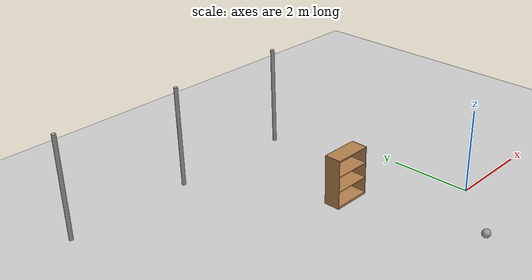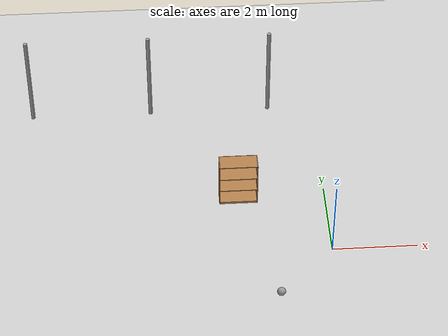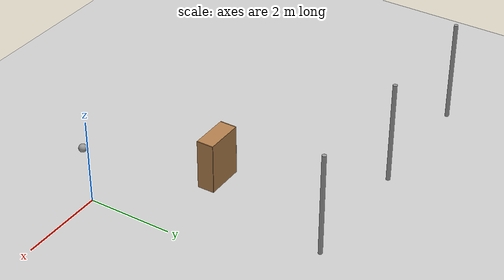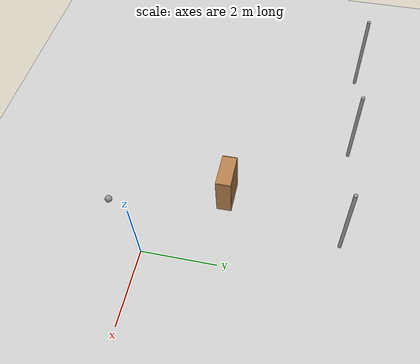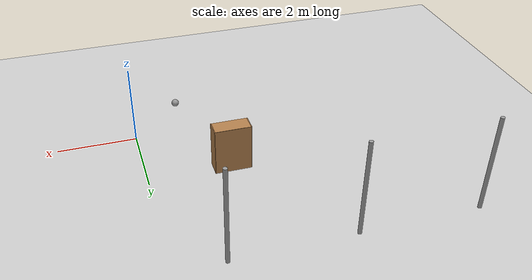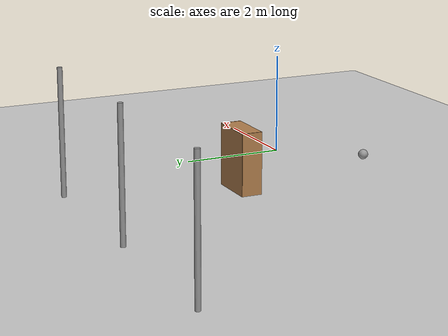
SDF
<sdf version="1.6">
 <world name="default">
  <model name="ground_plane">
   <static>1</static>
   <link name="link">
    <collision name="collision">
     <geometry><plane><normal>0 0 1</normal><size>100 100</size></plane></geometry>
     <surface><friction><ode><mu>100</mu><mu2>50</mu2></ode></friction></surface>
    </collision>
    <visual name="visual">
     <cast_shadows>0</cast_shadows>
     <geometry><plane><normal>0 0 1</normal><size>100 100</size></plane></geometry>
     <material>
      <script><uri>file://media/materials/scripts/gazebo.material</uri><name>Gazebo/Grey</name></script>
     </material>
    </visual>
   </link>
  </model>
  <model name="unit_cylinder_clone_2_clone_clone">
   <pose>-7.09352 4.97944 1.22098 -2e-06 -3e-06 -0.000778</pose>
   <link name="link">
    <inertial>
     <mass>1</mass>
     <inertia><ixx>0.145833</ixx><ixy>0</ixy><ixz>0</ixz><iyy>0.145833</iyy><iyz>0</iyz><izz>0.125</izz></inertia>
    </inertial>
    <collision name="collision">
     <geometry><cylinder><radius>0.0486883</radius><length>2.44196</length></cylinder></geometry>
    </collision>
    <visual name="visual">
     <geometry><cylinder><radius>0.0486883</radius><length>2.44196</length></cylinder></geometry>
     <material>
      <script><name>Gazebo/Grey</name><uri>file://media/materials/scripts/gazebo.material</uri></script>
     </material>
    </visual>
   </link>
  </model>
  <model name="unit_cylinder_clone_2_clone_clone_0">
   <pose>-4.11074 4.98612 1.22098 -0 -5e-06 -0.000881</pose>
   <link name="link">
    <inertial>
     <mass>1</mass>
     <inertia><ixx>0.145833</ixx><ixy>0</ixy><ixz>0</ixz><iyy>0.145833</iyy><iyz>0</iyz><izz>0.125</izz></inertia>
    </inertial>
    <collision name="collision">
     <geometry><cylinder><radius>0.0486883</radius><length>2.44196</length></cylinder></geometry>
    </collision>
    <visual name="visual">
     <geometry><cylinder><radius>0.0486883</radius><length>2.44196</length></cylinder></geometry>
     <material>
      <script><name>Gazebo/Grey</name><uri>file://media/materials/scripts/gazebo.material</uri></script>
     </material>
    </visual>
   </link>
  </model>
  <model name="unit_cylinder_clone_2_clone_clone_1">
   <pose>-1.12332 5.00358 1.22097 -2e-06 5e-06 -0.000651</pose>
   <link name="link">
    <inertial>
     <mass>1</mass>
     <inertia><ixx>0.145833</ixx><ixy>0</ixy><ixz>0</ixz><iyy>0.145833</iyy><iyz>0</iyz><izz>0.125</izz></inertia>
    </inertial>
    <collision name="collision">
     <geometry><cylinder><radius>0.0486883</radius><length>2.44196</length></cylinder></geometry>
    </collision>
    <visual name="visual">
     <geometry><cylinder><radius>0.0486883</radius><length>2.44196</length></cylinder></geometry>
     <material>
      <script><name>Gazebo/Grey</name><uri>file://media/materials/scripts/gazebo.material</uri></script>
     </material>
    </visual>
   </link>
  </model>
  <model name="bookshelf">
   <static>1</static>
   <link name="link">
    <inertial><mass>1</mass></inertial>
    <collision name="back">
     <pose>0 0.005 0.6 0 -0 0</pose>
     <geometry><box><size>0.9 0.01 1.2</size></box></geometry>
    </collision>
    <visual name="visual1">
     <pose>0 0.005 0.6 0 -0 0</pose>
     <geometry><box><size>0.9 0.01 1.2</size></box></geometry>
     <material>
      <script><uri>file://media/materials/scripts/gazebo.material</uri><name>Gazebo/Wood</name></script>
     </material>
    </visual>
    <collision name="left_side">
     <pose>0.45 -0.195 0.6 0 -0 0</pose>
     <geometry><box><size>0.02 0.4 1.2</size></box></geometry>
    </collision>
    <visual name="visual2">
     <pose>0.45 -0.195 0.6 0 -0 0</pose>
     <geometry><box><size>0.02 0.4 1.2</size></box></geometry>
     <material>
      <script><uri>file://media/materials/scripts/gazebo.material</uri><name>Gazebo/Wood</name></script>
     </material>
    </visual>
    <collision name="right_side">
     <pose>-0.45 -0.195 0.6 0 -0 0</pose>
     <geometry><box><size>0.02 0.4 1.2</size></box></geometry>
    </collision>
    <visual name="visual3">
     <pose>-0.45 -0.195 0.6 0 -0 0</pose>
     <geometry><box><size>0.02 0.4 1.2</size></box></geometry>
     <material>
      <script><uri>file://media/materials/scripts/gazebo.material</uri><name>Gazebo/Wood</name></script>
     </material>
    </visual>
    <collision name="bottom">
     <pose>0 -0.195 0.03 0 -0 0</pose>
     <geometry><box><size>0.88 0.4 0.06</size></box></geometry>
    </collision>
    <visual name="visual4">
     <pose>0 -0.195 0.03 0 -0 0</pose>
     <geometry><box><size>0.88 0.4 0.06</size></box></geometry>
     <material>
      <script><uri>file://media/materials/scripts/gazebo.material</uri><name>Gazebo/Wood</name></script>
     </material>
    </visual>
    <collision name="top">
     <pose>0 -0.195 1.19 0 -0 0</pose>
     <geometry><box><size>0.88 0.4 0.02</size></box></geometry>
    </collision>
    <visual name="visual5">
     <pose>0 -0.195 1.19 0 -0 0</pose>
     <geometry><box><size>0.88 0.4 0.02</size></box></geometry>
     <material>
      <script><uri>file://media/materials/scripts/gazebo.material</uri><name>Gazebo/Wood</name></script>
     </material>
    </visual>
    <collision name="low_shelf">
     <pose>0 -0.195 0.43 0 -0 0</pose>
     <geometry><box><size>0.88 0.4 0.02</size></box></geometry>
    </collision>
    <visual name="visual6">
     <pose>0 -0.195 0.43 0 -0 0</pose>
     <geometry><box><size>0.88 0.4 0.02</size></box></geometry>
     <material>
      <script><uri>file://media/materials/scripts/gazebo.material</uri><name>Gazebo/Wood</name></script>
     </material>
    </visual>
    <collision name="high_shelf">
     <pose>0 -0.195 0.8 0 -0 0</pose>
     <geometry><box><size>0.88 0.4 0.02</size></box></geometry>
    </collision>
    <visual name="visual7">
     <pose>0 -0.195 0.8 0 -0 0</pose>
     <geometry><box><size>0.88 0.4 0.02</size></box></geometry>
     <material>
      <script><uri>file://media/materials/scripts/gazebo.material</uri><name>Gazebo/Wood</name></script>
     </material>
    </visual>
   </link>
   <pose>-2.0875 2.03064 0 0 -0 0</pose>
  </model>
  <model name="my_ball">
   <link name="link_0">
    <inertial>
     <mass>1</mass>
     <inertia><ixx>0.1</ixx><ixy>0</ixy><ixz>0</ixz><iyy>0.1</iyy><iyz>0</iyz><izz>0.1</izz></inertia>
    </inertial>
    <visual name="visual">
     <geometry><sphere><radius>0.1</radius></sphere></geometry>
     <material>
      <lighting>1</lighting>
      <script><uri>file://media/materials/scripts/gazebo.material</uri><name>Gazebo/Grey</name></script>
      <shader type="pixel"><normal_map>__default__</normal_map></shader>
      <ambient>1 1 1 1</ambient>
      <diffuse>1 1 1 1</diffuse>
      <specular>1 1 1 1</specular>
      <emissive>1 1 1 1</emissive>
     </material>
    </visual>
    <collision name="collision">
     <geometry><sphere><radius>0.1</radius></sphere></geometry>
     <surface>
      <friction>
       <ode><mu>1</mu><mu2>1</mu2><fdir1>0 0 0</fdir1><slip1>0</slip1><slip2>0</slip2></ode>
       <torsional>
        <coefficient>1</coefficient>
        <patch_radius>0</patch_radius>
        <surface_radius>0</surface_radius>
        <use_patch_radius>1</use_patch_radius>
        <ode><slip>0</slip></ode>
       </torsional>
      </friction>
      <bounce><restitution_coefficient>0</restitution_coefficient><threshold>1e+06</threshold></bounce>
      <contact>
       <collide_without_contact>0</collide_without_contact>
       <collide_without_contact_bitmask>1</collide_without_contact_bitmask>
       <collide_bitmask>1</collide_bitmask>
       <ode>
        <soft_cfm>0</soft_cfm>
        <soft_erp>0.2</soft_erp>
        <kp>1e+13</kp>
        <kd>1</kd>
        <max_vel>0.01</max_vel>
        <min_depth>0</min_depth>
       </ode>
       <bullet>
        <split_impulse>1</split_impulse>
        <split_impulse_penetration_threshold>-0.01</split_impulse_penetration_threshold>
        <soft_cfm>0</soft_cfm>
        <soft_erp>0.2</soft_erp>
        <kp>1e+13</kp>
        <kd>1</kd>
       </bullet>
      </contact>
     </surface>
    </collision>
   </link>
   <static>0</static>
   <pose>-1.30875 -1.30589 0.1 0 -0 0</pose>
  </model>
 </world>
</sdf>
